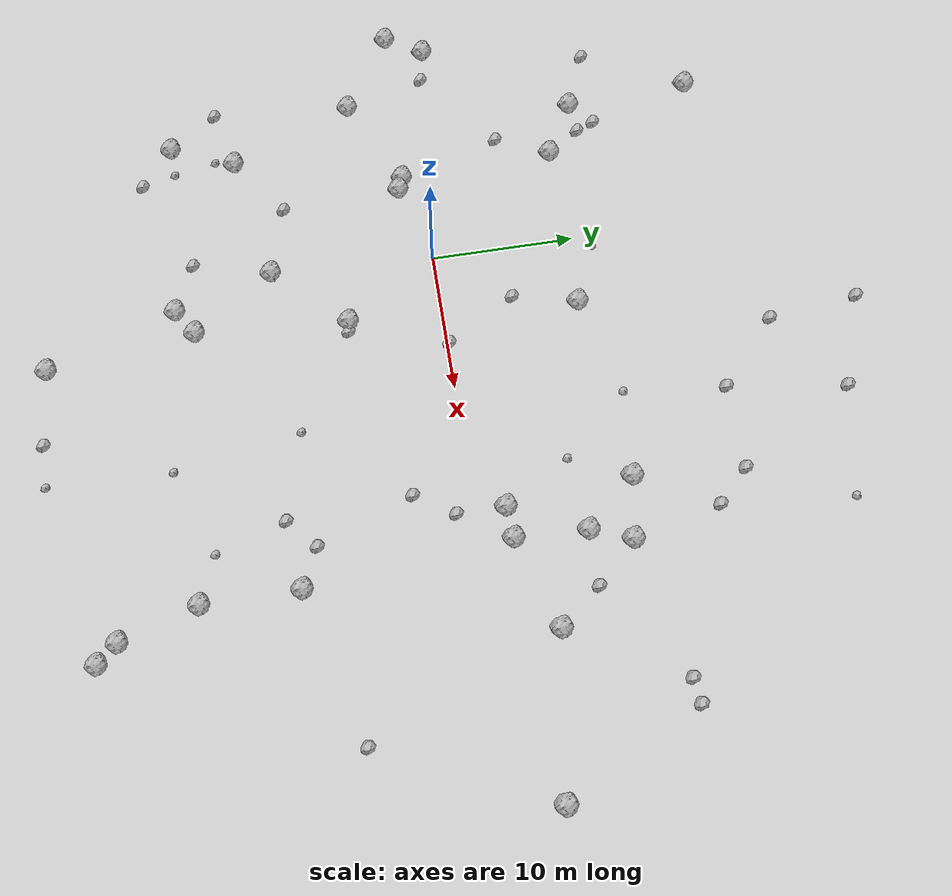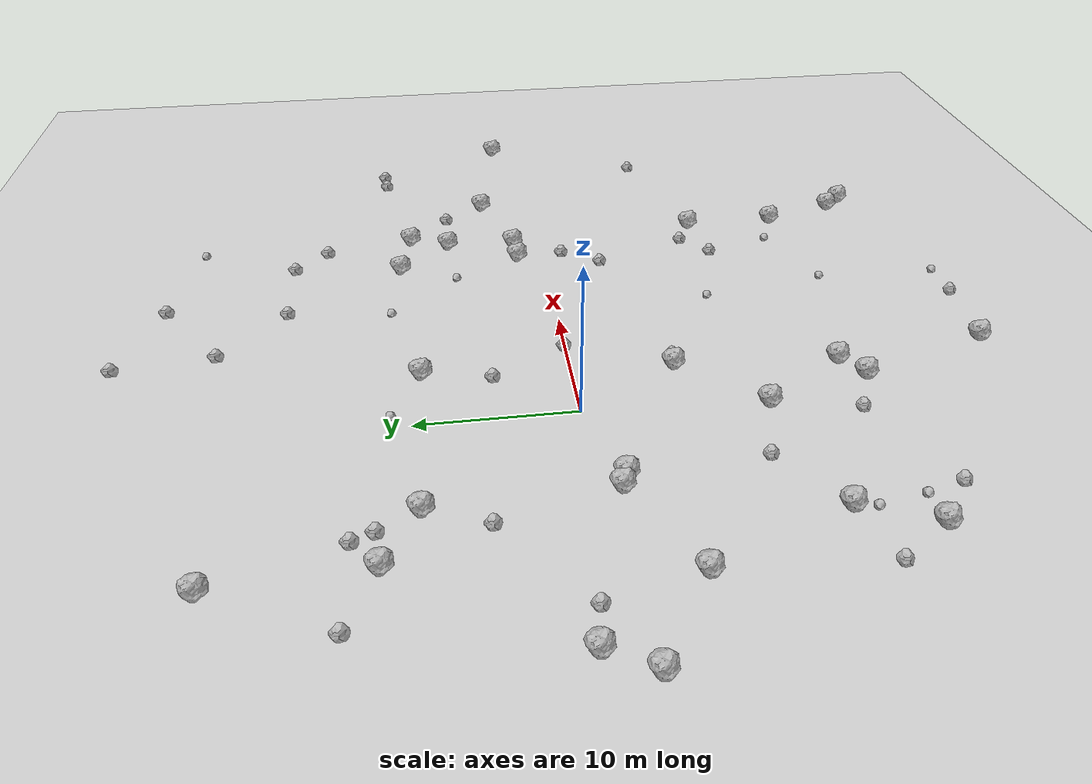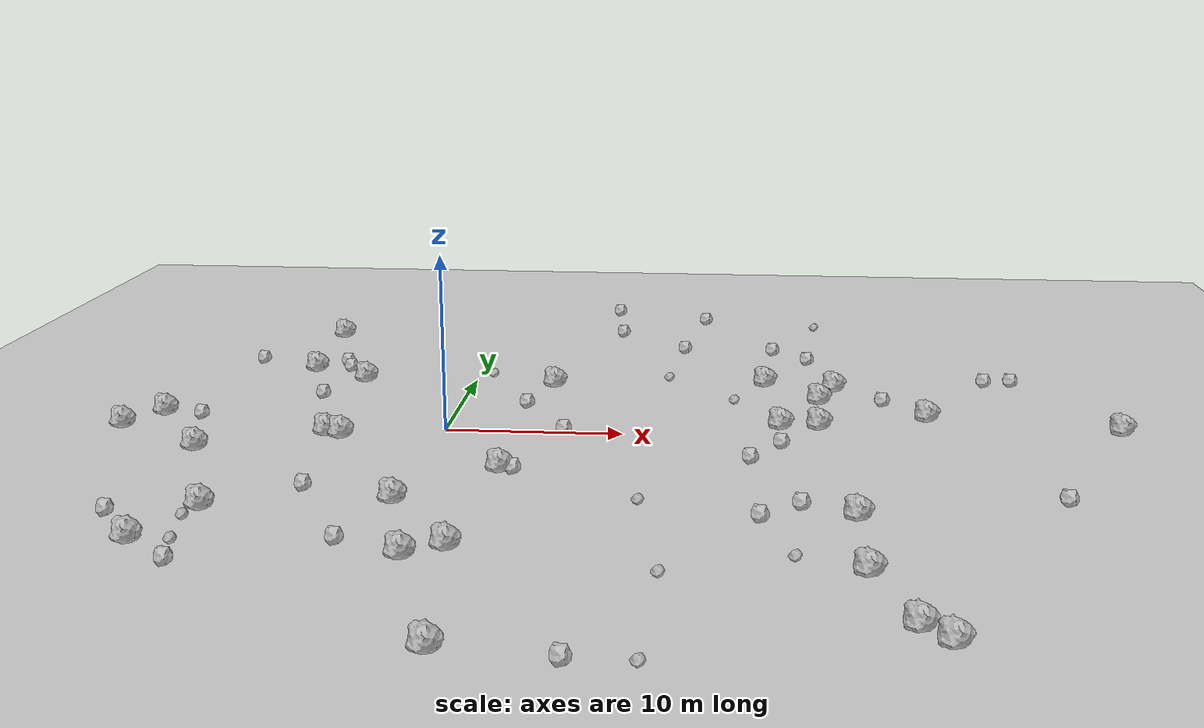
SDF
<sdf version="1.6">
 <world name="default">
  <include><uri>model://custom_ground</uri></include>
  <include><uri>model://sun</uri></include>
  <model name="rock1_0_0">
   <include><uri>model://rock1</uri><pose>-11.422423888568765 -17.45653633101054 0.5 0 0 0</pose></include>
  </model>
  <model name="rock1_0_1">
   <include><uri>model://rock1</uri><pose>21.29511063957643 7.028700530528809 0.5 0 0 0</pose></include>
  </model>
  <model name="rock1_0_2">
   <include><uri>model://rock1</uri><pose>18.90197504746974 1.9762546307096542 0.5 0 0 0</pose></include>
  </model>
  <model name="rock1_0_3">
   <include><uri>model://rock1</uri><pose>23.904759138559633 -23.740370525213148 0.5 0 0 0</pose></include>
  </model>
  <model name="rock1_0_4">
   <include><uri>model://rock1</uri><pose>27.35598047755287 4.094462015385709 0.5 0 0 0</pose></include>
  </model>
  <model name="rock1_0_5">
   <include><uri>model://rock1</uri><pose>-0.43154104800614235 -11.393826660500231 0.5 0 0 0</pose></include>
  </model>
  <model name="rock1_0_6">
   <include><uri>model://rock1</uri><pose>1.5048802186944208 -18.239227362847192 0.5 0 0 0</pose></include>
  </model>
  <model name="rock1_0_7">
   <include><uri>model://rock1</uri><pose>-6.568930959049503 -1.2539234567640456 0.5 0 0 0</pose></include>
  </model>
  <model name="rock1_0_8">
   <include><uri>model://rock1</uri><pose>22.299987637143197 -18.433251413544212 0.5 0 0 0</pose></include>
  </model>
  <model name="rock1_0_9">
   <include><uri>model://rock1</uri><pose>25.089245671686115 -25.11776613250037 0.5 0 0 0</pose></include>
  </model>
  <model name="rock1_0_10">
   <include><uri>model://rock1</uri><pose>-13.02083297470648 -4.377707332972459 0.5 0 0 0</pose></include>
  </model>
  <model name="rock1_0_11">
   <include><uri>model://rock1</uri><pose>21.075777433309945 2.11489564465338 0.5 0 0 0</pose></include>
  </model>
  <model name="rock1_0_12">
   <include><uri>model://rock1</uri><pose>22.302882200145916 -11.824543901835412 0.5 0 0 0</pose></include>
  </model>
  <model name="rock1_0_13">
   <include><uri>model://rock1</uri><pose>4.096442146311293 -6.4994771152563615 0.5 0 0 0</pose></include>
  </model>
  <model name="rock1_0_14">
   <include><uri>model://rock1</uri><pose>37.99875655014054 2.3755618427558147 0.5 0 0 0</pose></include>
  </model>
  <model name="rock1_0_15">
   <include><uri>model://rock1</uri><pose>22.33461778184487 9.78849343791191 0.5 0 0 0</pose></include>
  </model>
  <model name="rock1_0_16">
   <include><uri>model://rock1</uri><pose>18.115247521884484 10.569810243179688 0.5 0 0 0</pose></include>
  </model>
  <model name="rock1_0_17">
   <include><uri>model://rock1</uri><pose>-6.979055204974333 9.604320161331742 0.5 0 0 0</pose></include>
  </model>
  <model name="rock1_0_18">
   <include><uri>model://rock1</uri><pose>-16.991445342473416 1.7621251893038625 0.5 0 0 0</pose></include>
  </model>
  <model name="rock1_0_19">
   <include><uri>model://rock1</uri><pose>-11.226330479964847 20.502197814193806 0.5 0 0 0</pose></include>
  </model>
  <model name="rock1_0_20">
   <include><uri>model://rock1</uri><pose>-18.53074277306324 -0.829795608528368 0.5 0 0 0</pose></include>
  </model>
  <model name="rock1_0_21">
   <include><uri>model://rock1</uri><pose>-10.729988659180991 11.714281617839944 0.5 0 0 0</pose></include>
  </model>
  <model name="rock1_0_22">
   <include><uri>model://rock1</uri><pose>5.062383608551009 9.399847297263122 0.5 0 0 0</pose></include>
  </model>
  <model name="rock1_0_23">
   <include><uri>model://rock1</uri><pose>-9.572850426425783 -13.073966765319703 0.5 0 0 0</pose></include>
  </model>
  <model name="rock1_0_24">
   <include><uri>model://rock1</uri><pose>4.570803721416485 -27.24168480987268 0.5 0 0 0</pose></include>
  </model>
  <model name="rock1_0_25">
   <include><uri>model://rock1</uri><pose>3.335997369261129 -17.057339482379714 0.5 0 0 0</pose></include>
  </model>
  <model name="rock1_0_26">
   <include><uri>model://rock1</uri><pose>-5.641910765876851 -1.6284841010343598 0.5 0 0 0</pose></include>
  </model>
  <model name="rock2_0_0">
   <include><uri>model://rock2</uri><pose>-14.795966836213063 13.473840195143566 0.3 0 0 0</pose></include>
  </model>
  <model name="rock2_0_1">
   <include><uri>model://rock2</uri><pose>33.33357503447475 11.83070845017155 0.3 0 0 0</pose></include>
  </model>
  <model name="rock2_0_2">
   <include><uri>model://rock2</uri><pose>9.886727955150345 -27.71504935978107 0.3 0 0 0</pose></include>
  </model>
  <model name="rock2_0_3">
   <include><uri>model://rock2</uri><pose>-1.8920495503149262 -16.707963876040562 0.3 0 0 0</pose></include>
  </model>
  <model name="rock2_0_4">
   <include><uri>model://rock2</uri><pose>18.839104132591316 -1.2931808057941083 0.3 0 0 0</pose></include>
  </model>
  <model name="rock2_0_5">
   <include><uri>model://rock2</uri><pose>32.72237677885481 -8.983279314566445 0.3 0 0 0</pose></include>
  </model>
  <model name="rock2_0_6">
   <include><uri>model://rock2</uri><pose>19.609583591279275 -10.531477998621597 0.3 0 0 0</pose></include>
  </model>
  <model name="rock2_0_7">
   <include><uri>model://rock2</uri><pose>17.589936067342897 -12.335917428208457 0.3 0 0 0</pose></include>
  </model>
  <model name="rock2_0_8">
   <include><uri>model://rock2</uri><pose>18.674841870931118 18.14584031728993 0.3 0 0 0</pose></include>
  </model>
  <model name="rock2_0_9">
   <include><uri>model://rock2</uri><pose>7.589929846303608 28.629263281706542 0.3 0 0 0</pose></include>
  </model>
  <model name="rock2_0_10">
   <include><uri>model://rock2</uri><pose>3.9212329497730956 4.990401667515997 0.3 0 0 0</pose></include>
  </model>
  <model name="rock2_0_11">
   <include><uri>model://rock2</uri><pose>-13.86655170982083 -14.103359871072588 0.3 0 0 0</pose></include>
  </model>
  <model name="rock2_0_12">
   <include><uri>model://rock2</uri><pose>-9.086062877194522 13.251051951480086 0.3 0 0 0</pose></include>
  </model>
  <model name="rock2_0_13">
   <include><uri>model://rock2</uri><pose>14.01130624874363 26.360398216439542 0.3 0 0 0</pose></include>
  </model>
  <model name="rock2_0_14">
   <include><uri>model://rock2</uri><pose>4.8063555141060945 -6.565810468326788 0.3 0 0 0</pose></include>
  </model>
  <model name="rock2_0_15">
   <include><uri>model://rock2</uri><pose>20.877337114464048 15.93515967297914 0.3 0 0 0</pose></include>
  </model>
  <model name="rock2_0_16">
   <include><uri>model://rock2</uri><pose>25.006043575253734 7.009424857807474 0.3 0 0 0</pose></include>
  </model>
  <model name="rock2_0_17">
   <include><uri>model://rock2</uri><pose>31.665367741141793 11.659455462707776 0.3 0 0 0</pose></include>
  </model>
  <model name="rock2_0_18">
   <include><uri>model://rock2</uri><pose>-14.6460279500564 1.316855790210706 0.3 0 0 0</pose></include>
  </model>
  <model name="rock2_0_19">
   <include><uri>model://rock2</uri><pose>17.137182894728916 -3.9296160048041244 0.3 0 0 0</pose></include>
  </model>
  <model name="rock2_0_20">
   <include><uri>model://rock2</uri><pose>12.8099785089616 18.195548403789182 0.3 0 0 0</pose></include>
  </model>
  <model name="rock2_0_21">
   <include><uri>model://rock2</uri><pose>8.321747116880221 22.3062997122856 0.3 0 0 0</pose></include>
  </model>
  <model name="rock2_0_22">
   <include><uri>model://rock2</uri><pose>-5.3522457006533575 -9.934176551140279 0.3 0 0 0</pose></include>
  </model>
  <model name="rock2_0_23">
   <include><uri>model://rock2</uri><pose>6.6889818469903695 0.1554803210774942 0.3 0 0 0</pose></include>
  </model>
  <model name="rock2_0_24">
   <include><uri>model://rock2</uri><pose>-8.787995471852712 -19.695665179855652 0.3 0 0 0</pose></include>
  </model>
  <model name="rock2_0_25">
   <include><uri>model://rock2</uri><pose>-8.723950658191804 5.935528242038259 0.3 0 0 0</pose></include>
  </model>
  <model name="rock2_0_26">
   <include><uri>model://rock2</uri><pose>-8.55203846838452 11.97660590289432 0.3 0 0 0</pose></include>
  </model>
  <model name="rock3_0_0">
   <include><uri>model://rock3</uri><pose>11.600917251244429 -10.664968413043187 0.2 0 0 0</pose></include>
  </model>
  <model name="rock3_0_1">
   <include><uri>model://rock3</uri><pose>-9.999675906613774 -14.420293324235585 0.2 0 0 0</pose></include>
  </model>
  <model name="rock3_0_2">
   <include><uri>model://rock3</uri><pose>12.085326698453265 11.199673688135313 0.2 0 0 0</pose></include>
  </model>
  <model name="rock3_0_3">
   <include><uri>model://rock3</uri><pose>12.836567297247328 -27.779343836853034 0.2 0 0 0</pose></include>
  </model>
  <model name="rock3_0_4">
   <include><uri>model://rock3</uri><pose>-9.44324231934436 -17.386103856414067 0.2 0 0 0</pose></include>
  </model>
  <model name="rock3_0_5">
   <include><uri>model://rock3</uri><pose>19.10493584067676 -17.137663188881895 0.2 0 0 0</pose></include>
  </model>
  <model name="rock3_0_6">
   <include><uri>model://rock3</uri><pose>13.09800177222877 -19.35196003471509 0.2 0 0 0</pose></include>
  </model>
  <model name="rock3_0_7">
   <include><uri>model://rock3</uri><pose>21.715891274960853 24.8793692326202 0.2 0 0 0</pose></include>
  </model>
  <model name="rock3_0_8">
   <include><uri>model://rock3</uri><pose>16.19531016059912 6.56972005047016 0.2 0 0 0</pose></include>
  </model>
  <model name="rock3_0_9">
   <include><uri>model://rock3</uri><pose>0.8627414381615282 11.229692996740198 0.2 0 0 0</pose></include>
  </model>
 </world>
</sdf>
